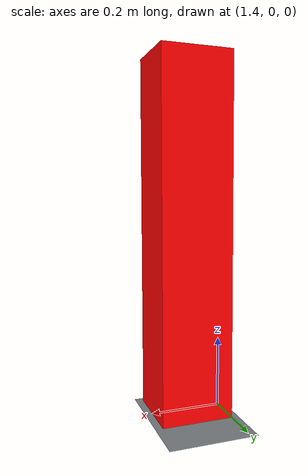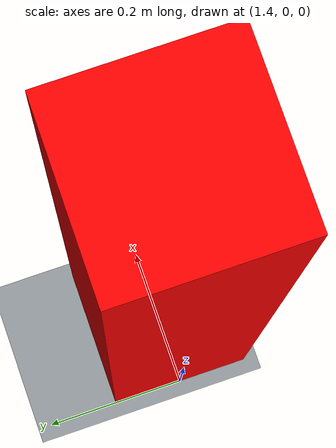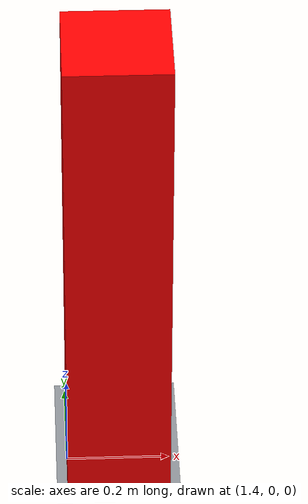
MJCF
<mujoco model="camera-target">
  <visual>
    <headlight ambient="0.35 0.35 0.35" diffuse="0.5 0.5 0.5" specular="0.1 0.1 0.1"/>
  </visual>

  <asset>
    <texture name="skybox" type="skybox" builtin="gradient" rgb1="0.55 0.65 0.75" rgb2="0.15 0.18 0.22"
             width="512" height="512"/>
    <texture name="checker" type="2d" builtin="checker" rgb1="0.62 0.64 0.66" rgb2="0.5 0.52 0.54"
             width="512" height="512"/>
    <material name="floor" texture="checker" texrepeat="8 8" texuniform="true"/>
    <material name="target" rgba="1 0 0 1" emission="1" specular="0"/>
  </asset>

  <worldbody>
    <light name="sun" pos="0 0 3" dir="0 0 -1" directional="true" diffuse="0.6 0.6 0.6"/>
    <geom name="floor" type="plane" size="0 0 0.05" material="floor"/>
    <geom name="target" type="box" pos="1.5 0 0.5" size="0.1 0.1 0.5" material="target"/>
  </worldbody>
</mujoco>
